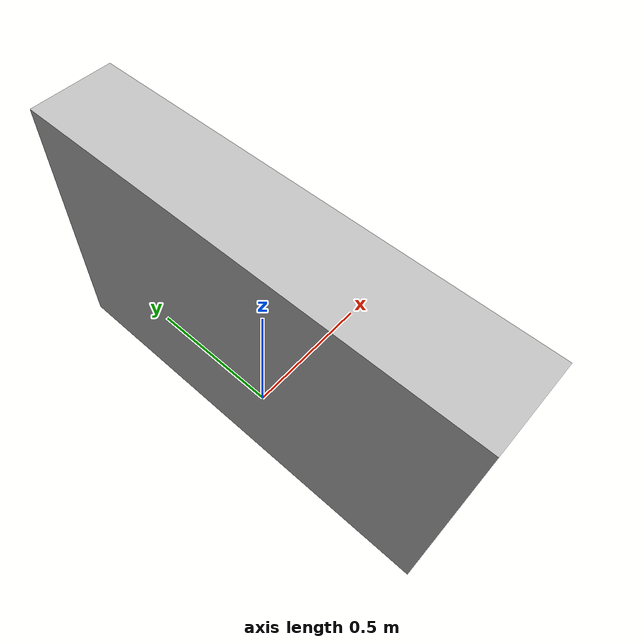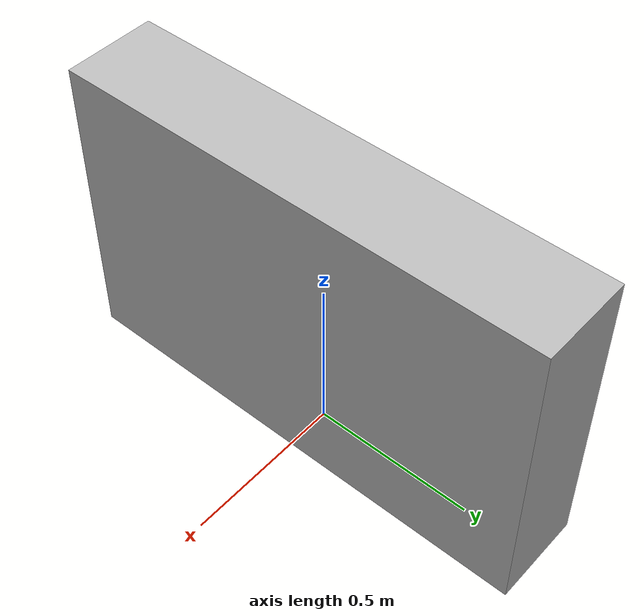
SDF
<?xml version="1.0" ?>
<sdf version="1.6">
  <model name="rwc2022/official_pantry">
    <static>true</static>
    <link name="1_link">
      <collision name="1_col">
        <geometry>
          <box>
            <size>0.28 1.47 0.93</size>
          </box>
        </geometry>
      </collision>
      <visual name="1_vis">
        <geometry>
          <box>
            <size>0.28 1.47 0.93</size>
          </box>
        </geometry>
      </visual>
      <pose>0.0 0.0 0.465 0 0 0</pose>
    </link>
    <link name="on_top_of">
      <virtual_volume name="on_top_of_vv">
        <geometry>
          <box>
            <size>0.26 1.41 0.35</size>
          </box>
        </geometry>
        <pose>0.0 0.0 1.125 0 0 0</pose>
      </virtual_volume>
    </link>
    <link name="in_front_of">
      <virtual_volume name="in_front_of_vv">
        <geometry>
          <box>
            <size>0.2 0.2 0.01</size>
          </box>
        </geometry>
        <pose>0.65 1.1 0.005 0 0 0</pose>
      </virtual_volume>
    </link>
  </model>
</sdf>
